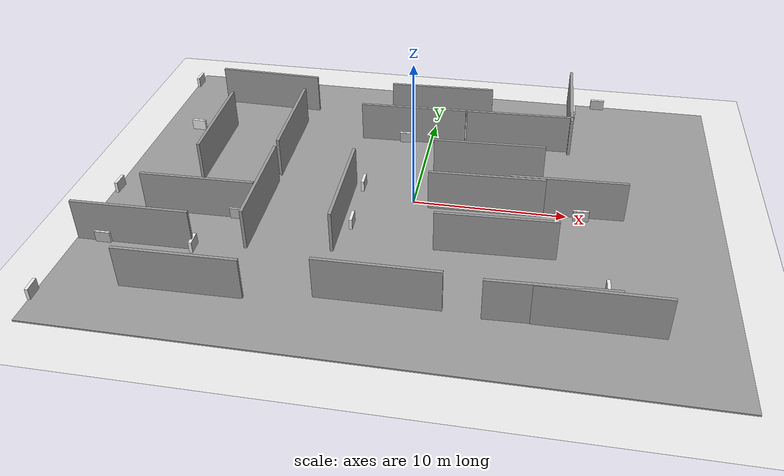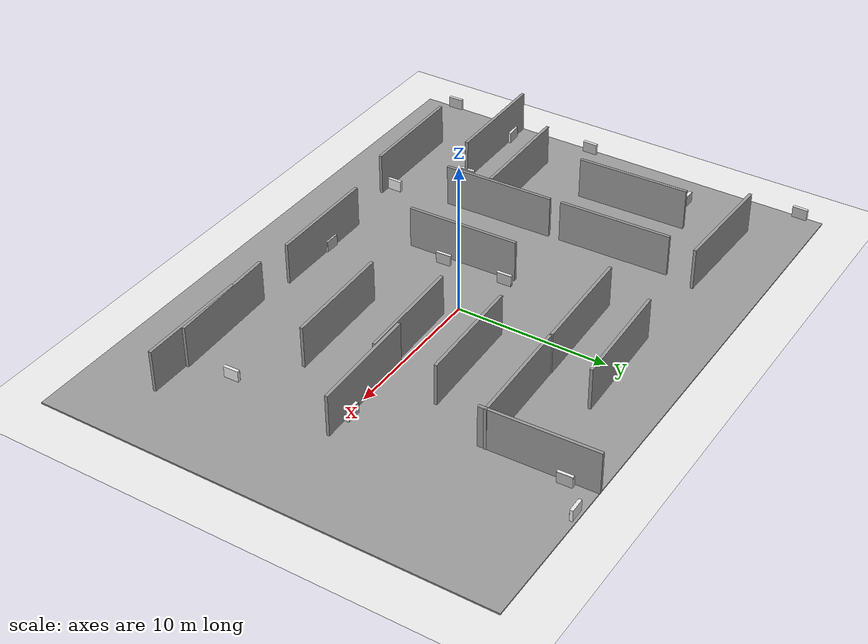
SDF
<sdf version="1.7">
 <world name="default">
  <model name="ground_plane">
   <static>1</static>
   <link name="link">
    <collision name="collision">
     <geometry><plane><normal>0 0 1</normal><size>100 100</size></plane></geometry>
     <surface><friction><ode><mu>100</mu><mu2>50</mu2></ode></friction></surface>
    </collision>
    <visual name="visual">
     <cast_shadows>0</cast_shadows>
     <geometry><plane><normal>0 0 1</normal><size>100 100</size></plane></geometry>
     <material>
      <script><uri>file://media/materials/scripts/gazebo.material</uri><name>Gazebo/White</name></script>
     </material>
    </visual>
   </link>
  </model>
  <model name="floor">
   <pose>-0.081554 -0.068623 0.05 0 -0 0</pose>
   <static>1</static>
   <link name="link">
    <inertial>
     <mass>1</mass>
     <inertia>
      <ixx>0.166667</ixx>
      <ixy>0</ixy>
      <ixz>0</ixz>
      <iyy>0.166667</iyy>
      <iyz>0</iyz>
      <izz>0.166667</izz>
     </inertia>
    </inertial>
    <collision name="collision"><geometry><box><size>40 30 0.1</size></box></geometry></collision>
    <visual name="visual">
     <geometry><box><size>40 30 0.1</size></box></geometry>
     <material>
      <script><name>Gazebo/Grey</name><uri>file://media/materials/scripts/gazebo.material</uri></script>
     </material>
    </visual>
   </link>
  </model>
  <model name="grey_wall">
   <static>1</static>
   <link name="link">
    <pose>0 0 1.4 0 -0 0.1</pose>
    <collision name="collision"><geometry><box><size>7.5 0.2 2.8</size></box></geometry></collision>
    <visual name="visual">
     <cast_shadows>0</cast_shadows>
     <geometry><box><size>7.5 0.2 2.8</size></box></geometry>
     <material>
      <script>
       <uri>model://grey_wall/materials/scripts</uri>
       <uri>model://grey_wall/materials/textures</uri>
       <name>vrc/grey_wall</name>
      </script>
     </material>
    </visual>
   </link>
   <pose>12.0141 -10.3857 0.1 0 0 -0.092931</pose>
  </model>
  <model name="grey_wall_clone">
   <static>1</static>
   <link name="link">
    <pose>0 0 1.4 0 -0 0.1</pose>
    <collision name="collision"><geometry><box><size>7.5 0.2 2.8</size></box></geometry></collision>
    <visual name="visual">
     <cast_shadows>0</cast_shadows>
     <geometry><box><size>7.5 0.2 2.8</size></box></geometry>
     <material>
      <script>
       <uri>model://grey_wall/materials/scripts</uri>
       <uri>model://grey_wall/materials/textures</uri>
       <name>vrc/grey_wall</name>
      </script>
     </material>
    </visual>
   </link>
   <pose>-13.3371 -3.69551 0.1 0 0 -0.080153</pose>
  </model>
  <model name="grey_wall_clone_clone">
   <static>1</static>
   <link name="link">
    <pose>0 0 1.4 0 -0 0.1</pose>
    <collision name="collision"><geometry><box><size>7.5 0.2 2.8</size></box></geometry></collision>
    <visual name="visual">
     <cast_shadows>0</cast_shadows>
     <geometry><box><size>7.5 0.2 2.8</size></box></geometry>
     <material>
      <script>
       <uri>model://grey_wall/materials/scripts</uri>
       <uri>model://grey_wall/materials/textures</uri>
       <name>vrc/grey_wall</name>
      </script>
     </material>
    </visual>
   </link>
   <pose>-14.7906 3.85135 0.1 0 0 -1.64658</pose>
  </model>
  <model name="grey_wall_clone_clone_clone">
   <static>1</static>
   <link name="link">
    <pose>0 0 1.4 0 -0 0.1</pose>
    <collision name="collision"><geometry><box><size>7.5 0.2 2.8</size></box></geometry></collision>
    <visual name="visual">
     <cast_shadows>0</cast_shadows>
     <geometry><box><size>7.5 0.2 2.8</size></box></geometry>
     <material>
      <script>
       <uri>model://grey_wall/materials/scripts</uri>
       <uri>model://grey_wall/materials/textures</uri>
       <name>vrc/grey_wall</name>
      </script>
     </material>
    </visual>
   </link>
   <pose>-9.68074 5.24499 0.1 0 0 -1.64658</pose>
  </model>
  <model name="grey_wall_clone_clone_clone_0">
   <static>1</static>
   <link name="link">
    <pose>0 0 1.4 0 -0 0.1</pose>
    <collision name="collision"><geometry><box><size>7.5 0.2 2.8</size></box></geometry></collision>
    <visual name="visual">
     <cast_shadows>0</cast_shadows>
     <geometry><box><size>7.5 0.2 2.8</size></box></geometry>
     <material>
      <script>
       <uri>model://grey_wall/materials/scripts</uri>
       <uri>model://grey_wall/materials/textures</uri>
       <name>vrc/grey_wall</name>
      </script>
     </material>
    </visual>
   </link>
   <pose>-4.16896 -2.3534 0.1 0 0 -1.64658</pose>
  </model>
  <model name="grey_wall_clone_clone_clone_1">
   <static>1</static>
   <link name="link">
    <pose>0 0 1.4 0 -0 0.1</pose>
    <collision name="collision"><geometry><box><size>7.5 0.2 2.8</size></box></geometry></collision>
    <visual name="visual">
     <cast_shadows>0</cast_shadows>
     <geometry><box><size>7.5 0.2 2.8</size></box></geometry>
     <material>
      <script>
       <uri>model://grey_wall/materials/scripts</uri>
       <uri>model://grey_wall/materials/textures</uri>
       <name>vrc/grey_wall</name>
      </script>
     </material>
    </visual>
   </link>
   <pose>-9.46126 -2.97794 0.1 0 0 -1.64658</pose>
  </model>
  <model name="grey_wall_clone_0">
   <static>1</static>
   <link name="link">
    <pose>0 0 1.4 0 -0 0.1</pose>
    <collision name="collision"><geometry><box><size>7.5 0.2 2.8</size></box></geometry></collision>
    <visual name="visual">
     <cast_shadows>0</cast_shadows>
     <geometry><box><size>7.5 0.2 2.8</size></box></geometry>
     <material>
      <script>
       <uri>model://grey_wall/materials/scripts</uri>
       <uri>model://grey_wall/materials/textures</uri>
       <name>vrc/grey_wall</name>
      </script>
     </material>
    </visual>
   </link>
   <pose>-0.392258 -10.242 0.1 0 0 -0.089</pose>
  </model>
  <model name="grey_wall_clone_1">
   <static>1</static>
   <link name="link">
    <pose>0 0 1.4 0 -0 0.1</pose>
    <collision name="collision"><geometry><box><size>7.5 0.2 2.8</size></box></geometry></collision>
    <visual name="visual">
     <cast_shadows>0</cast_shadows>
     <geometry><box><size>7.5 0.2 2.8</size></box></geometry>
     <material>
      <script>
       <uri>model://grey_wall/materials/scripts</uri>
       <uri>model://grey_wall/materials/textures</uri>
       <name>vrc/grey_wall</name>
      </script>
     </material>
    </visual>
   </link>
   <pose>9.31794 -10.3288 0.1 0 0 -0.062574</pose>
  </model>
  <model name="grey_wall_clone_2">
   <static>1</static>
   <link name="link">
    <pose>0 0 1.4 0 -0 0.1</pose>
    <collision name="collision"><geometry><box><size>7.5 0.2 2.8</size></box></geometry></collision>
    <visual name="visual">
     <cast_shadows>0</cast_shadows>
     <geometry><box><size>7.5 0.2 2.8</size></box></geometry>
     <material>
      <script>
       <uri>model://grey_wall/materials/scripts</uri>
       <uri>model://grey_wall/materials/textures</uri>
       <name>vrc/grey_wall</name>
      </script>
     </material>
    </visual>
   </link>
   <pose>6.31492 7.83301 0.1 0 0 -0.062574</pose>
  </model>
  <model name="grey_wall_clone_3">
   <static>1</static>
   <link name="link">
    <pose>0 0 1.4 0 -0 0.1</pose>
    <collision name="collision"><geometry><box><size>7.5 0.2 2.8</size></box></geometry></collision>
    <visual name="visual">
     <cast_shadows>0</cast_shadows>
     <geometry><box><size>7.5 0.2 2.8</size></box></geometry>
     <material>
      <script>
       <uri>model://grey_wall/materials/scripts</uri>
       <uri>model://grey_wall/materials/textures</uri>
       <name>vrc/grey_wall</name>
      </script>
     </material>
    </visual>
   </link>
   <pose>4.56276 3.55513 0.1 0 0 -0.062574</pose>
  </model>
  <model name="grey_wall_clone_clone_clone_0_clone_clone">
   <static>1</static>
   <link name="link">
    <pose>0 0 1.4 0 -0 0.1</pose>
    <collision name="collision"><geometry><box><size>7.5 0.2 2.8</size></box></geometry></collision>
    <visual name="visual">
     <cast_shadows>0</cast_shadows>
     <geometry><box><size>7.5 0.2 2.8</size></box></geometry>
     <material>
      <script>
       <uri>model://grey_wall/materials/scripts</uri>
       <uri>model://grey_wall/materials/textures</uri>
       <name>vrc/grey_wall</name>
      </script>
     </material>
    </visual>
   </link>
   <pose>9.85606 11.2329 0.1 0 0 -1.64658</pose>
  </model>
  <model name="grey_wall_clone_2_clone">
   <static>1</static>
   <link name="link">
    <pose>0 0 1.4 0 -0 0.1</pose>
    <collision name="collision"><geometry><box><size>7.5 0.2 2.8</size></box></geometry></collision>
    <visual name="visual">
     <cast_shadows>0</cast_shadows>
     <geometry><box><size>7.5 0.2 2.8</size></box></geometry>
     <material>
      <script>
       <uri>model://grey_wall/materials/scripts</uri>
       <uri>model://grey_wall/materials/textures</uri>
       <name>vrc/grey_wall</name>
      </script>
     </material>
    </visual>
   </link>
   <pose>0.32639 11.0034 0.1 0 0 -0.062574</pose>
  </model>
  <model name="grey_wall_clone_3_clone">
   <static>1</static>
   <link name="link">
    <pose>0 0 1.4 0 -0 0.1</pose>
    <collision name="collision"><geometry><box><size>7.5 0.2 2.8</size></box></geometry></collision>
    <visual name="visual">
     <cast_shadows>0</cast_shadows>
     <geometry><box><size>7.5 0.2 2.8</size></box></geometry>
     <material>
      <script>
       <uri>model://grey_wall/materials/scripts</uri>
       <uri>model://grey_wall/materials/textures</uri>
       <name>vrc/grey_wall</name>
      </script>
     </material>
    </visual>
   </link>
   <pose>5.77376 -4.6852 0.1 0 0 -0.062574</pose>
  </model>
  <model name="left_dir_sign_clone_clone">
   <static>1</static>
   <pose>10.1673 13.0421 0.45 0 0 -3.11001</pose>
   <link name="link">
    <inertial>
     <mass>1</mass>
     <inertia>
      <ixx>0.166667</ixx>
      <ixy>0</ixy>
      <ixz>0</ixz>
      <iyy>0.166667</iyy>
      <iyz>0</iyz>
      <izz>0.166667</izz>
     </inertia>
    </inertial>
    <collision name="collision"><geometry><box><size>0.2 1 0.8</size></box></geometry></collision>
    <visual name="visual_body">
     <geometry><box><size>0.2 1 0.8</size></box></geometry>
     <material>
      <script><name>Gazebo/White</name><uri>file://media/materials/scripts/gazebo.material</uri></script>
     </material>
    </visual>
    <visual name="front_face">
     <geometry><box><size>0.01 1 0.8</size></box></geometry>
     <material>
      <script><uri>model://arrow_detection/worlds/map_1_materials</uri><name>right/Diffuse</name></script>
     </material>
     <pose>-0.101 0 0 3.14 -0 0</pose>
    </visual>
   </link>
  </model>
  <model name="left_dir_sign_clone_clone_clone">
   <static>1</static>
   <pose>10.9092 -0.347927 0.45 0 -0 1.6013</pose>
   <link name="link">
    <inertial>
     <mass>1</mass>
     <inertia>
      <ixx>0.166667</ixx>
      <ixy>0</ixy>
      <ixz>0</ixz>
      <iyy>0.166667</iyy>
      <iyz>0</iyz>
      <izz>0.166667</izz>
     </inertia>
    </inertial>
    <collision name="collision"><geometry><box><size>0.2 1 0.8</size></box></geometry></collision>
    <visual name="visual_body">
     <geometry><box><size>0.2 1 0.8</size></box></geometry>
     <material>
      <script><name>Gazebo/White</name><uri>file://media/materials/scripts/gazebo.material</uri></script>
     </material>
    </visual>
    <visual name="front_face">
     <geometry><box><size>0.01 1 0.8</size></box></geometry>
     <material>
      <script><uri>model://arrow_detection/worlds/map_1_materials</uri><name>right/Diffuse</name></script>
     </material>
     <pose>-0.101 0 0 3.14 -0 0</pose>
    </visual>
   </link>
  </model>
  <model name="right_dir_sign">
   <static>1</static>
   <pose>-3.43257 -3.26418 0.45 0 0 -3.10589</pose>
   <link name="link">
    <inertial>
     <mass>1</mass>
     <inertia>
      <ixx>0.166667</ixx>
      <ixy>0</ixy>
      <ixz>0</ixz>
      <iyy>0.166667</iyy>
      <iyz>0</iyz>
      <izz>0.166667</izz>
     </inertia>
    </inertial>
    <collision name="collision"><geometry><box><size>0.2 1 0.8</size></box></geometry></collision>
    <visual name="visual_body">
     <geometry><box><size>0.2 1 0.8</size></box></geometry>
     <material>
      <script><name>Gazebo/White</name><uri>file://media/materials/scripts/gazebo.material</uri></script>
     </material>
    </visual>
    <visual name="front_face">
     <geometry><box><size>0.01 1 0.8</size></box></geometry>
     <material>
      <script><uri>model://arrow_detection/worlds/map_1_materials</uri><name>right/Diffuse</name></script>
     </material>
     <pose>-0.101 0 0 0 -0 0</pose>
    </visual>
   </link>
  </model>
  <model name="grey_wall_clone_3_clone_0">
   <static>1</static>
   <link name="link">
    <pose>0 0 1.4 0 -0 0.1</pose>
    <collision name="collision"><geometry><box><size>7.5 0.2 2.8</size></box></geometry></collision>
    <visual name="visual">
     <cast_shadows>0</cast_shadows>
     <geometry><box><size>7.5 0.2 2.8</size></box></geometry>
     <material>
      <script>
       <uri>model://grey_wall/materials/scripts</uri>
       <uri>model://grey_wall/materials/textures</uri>
       <name>vrc/grey_wall</name>
      </script>
     </material>
    </visual>
   </link>
   <pose>4.77508 -0.390115 0.1 0 0 -0.062574</pose>
  </model>
  <model name="left_dir_sign_clone_clone_clone_clone">
   <static>1</static>
   <pose>-3.59518 1.03523 0.45 0 0 -3.11552</pose>
   <link name="link">
    <inertial>
     <mass>1</mass>
     <inertia>
      <ixx>0.166667</ixx>
      <ixy>0</ixy>
      <ixz>0</ixz>
      <iyy>0.166667</iyy>
      <iyz>0</iyz>
      <izz>0.166667</izz>
     </inertia>
    </inertial>
    <collision name="collision"><geometry><box><size>0.2 1 0.8</size></box></geometry></collision>
    <visual name="visual_body">
     <geometry><box><size>0.2 1 0.8</size></box></geometry>
     <material>
      <script><name>Gazebo/White</name><uri>file://media/materials/scripts/gazebo.material</uri></script>
     </material>
    </visual>
    <visual name="front_face">
     <geometry><box><size>0.01 1 0.8</size></box></geometry>
     <material>
      <script><uri>model://arrow_detection/worlds/map_1_materials</uri><name>right/Diffuse</name></script>
     </material>
     <pose>-0.101 0 0 3.14 -0 0</pose>
    </visual>
   </link>
  </model>
  <model name="left_dir_sign_clone_clone_clone_clone_clone">
   <static>1</static>
   <pose>12.5495 -7.34023 0.45 0 -0 0.025385</pose>
   <link name="link">
    <inertial>
     <mass>1</mass>
     <inertia>
      <ixx>0.166667</ixx>
      <ixy>0</ixy>
      <ixz>0</ixz>
      <iyy>0.166667</iyy>
      <iyz>0</iyz>
      <izz>0.166667</izz>
     </inertia>
    </inertial>
    <collision name="collision"><geometry><box><size>0.2 1 0.8</size></box></geometry></collision>
    <visual name="visual_body">
     <geometry><box><size>0.2 1 0.8</size></box></geometry>
     <material>
      <script><name>Gazebo/White</name><uri>file://media/materials/scripts/gazebo.material</uri></script>
     </material>
    </visual>
    <visual name="front_face">
     <geometry><box><size>0.01 1 0.8</size></box></geometry>
     <material>
      <script><uri>model://arrow_detection/worlds/map_1_materials</uri><name>right/Diffuse</name></script>
     </material>
     <pose>-0.101 0 0 3.14 -0 0</pose>
    </visual>
   </link>
  </model>
  <model name="grey_wall_clone_3_clone_0_clone">
   <static>1</static>
   <link name="link">
    <pose>0 0 1.4 0 -0 0.1</pose>
    <collision name="collision"><geometry><box><size>7.5 0.2 2.8</size></box></geometry></collision>
    <visual name="visual">
     <cast_shadows>0</cast_shadows>
     <geometry><box><size>7.5 0.2 2.8</size></box></geometry>
     <material>
      <script>
       <uri>model://grey_wall/materials/scripts</uri>
       <uri>model://grey_wall/materials/textures</uri>
       <name>vrc/grey_wall</name>
      </script>
     </material>
    </visual>
   </link>
   <pose>9.92499 0.021685 0.1 0 0 -0.062574</pose>
  </model>
  <model name="grey_wall_clone_0_clone">
   <static>1</static>
   <link name="link">
    <pose>0 0 1.4 0 -0 0.1</pose>
    <collision name="collision"><geometry><box><size>7.5 0.2 2.8</size></box></geometry></collision>
    <visual name="visual">
     <cast_shadows>0</cast_shadows>
     <geometry><box><size>7.5 0.2 2.8</size></box></geometry>
     <material>
      <script>
       <uri>model://grey_wall/materials/scripts</uri>
       <uri>model://grey_wall/materials/textures</uri>
       <name>vrc/grey_wall</name>
      </script>
     </material>
    </visual>
   </link>
   <pose>-11.7881 -11.1645 0.1 0 0 -0.083866</pose>
  </model>
  <model name="grey_wall_clone_0_clone_0">
   <static>1</static>
   <link name="link">
    <pose>0 0 1.4 0 -0 0.1</pose>
    <collision name="collision"><geometry><box><size>7.5 0.2 2.8</size></box></geometry></collision>
    <visual name="visual">
     <cast_shadows>0</cast_shadows>
     <geometry><box><size>7.5 0.2 2.8</size></box></geometry>
     <material>
      <script>
       <uri>model://grey_wall/materials/scripts</uri>
       <uri>model://grey_wall/materials/textures</uri>
       <name>vrc/grey_wall</name>
      </script>
     </material>
    </visual>
   </link>
   <pose>-16.2463 -7.33038 0.1 0 0 -0.08449</pose>
  </model>
  <model name="grey_wall_clone_2_clone_clone">
   <static>1</static>
   <link name="link">
    <pose>0 0 1.4 0 -0 0.1</pose>
    <collision name="collision"><geometry><box><size>7.5 0.2 2.8</size></box></geometry></collision>
    <visual name="visual">
     <cast_shadows>0</cast_shadows>
     <geometry><box><size>7.5 0.2 2.8</size></box></geometry>
     <material>
      <script>
       <uri>model://grey_wall/materials/scripts</uri>
       <uri>model://grey_wall/materials/textures</uri>
       <name>vrc/grey_wall</name>
      </script>
     </material>
    </visual>
   </link>
   <pose>-1.29384 7.57148 0.1 0 0 -0.062574</pose>
  </model>
  <model name="grey_wall_clone_clone_clone_2">
   <static>1</static>
   <link name="link">
    <pose>0 0 1.4 0 -0 0.1</pose>
    <collision name="collision"><geometry><box><size>7.5 0.2 2.8</size></box></geometry></collision>
    <visual name="visual">
     <cast_shadows>0</cast_shadows>
     <geometry><box><size>7.5 0.2 2.8</size></box></geometry>
     <material>
      <script>
       <uri>model://grey_wall/materials/scripts</uri>
       <uri>model://grey_wall/materials/textures</uri>
       <name>vrc/grey_wall</name>
      </script>
     </material>
    </visual>
   </link>
   <pose>-13.003 11.0219 0.1 0 -0 3.01212</pose>
  </model>
  <model name="left_dir_sign_clone_clone_clone_clone_0">
   <static>1</static>
   <pose>-19.9392 13.408 0.45 0 -0 3.12008</pose>
   <link name="link">
    <inertial>
     <mass>1</mass>
     <inertia>
      <ixx>0.166667</ixx>
      <ixy>0</ixy>
      <ixz>0</ixz>
      <iyy>0.166667</iyy>
      <iyz>0</iyz>
      <izz>0.166667</izz>
     </inertia>
    </inertial>
    <collision name="collision"><geometry><box><size>0.2 1 0.8</size></box></geometry></collision>
    <visual name="visual_body">
     <geometry><box><size>0.2 1 0.8</size></box></geometry>
     <material>
      <script><name>Gazebo/White</name><uri>file://media/materials/scripts/gazebo.material</uri></script>
     </material>
    </visual>
    <visual name="front_face">
     <geometry><box><size>0.01 1 0.8</size></box></geometry>
     <material>
      <script><uri>model://arrow_detection/worlds/map_1_materials</uri><name>right/Diffuse</name></script>
     </material>
     <pose>-0.101 0 0 3.14 -0 0</pose>
    </visual>
   </link>
  </model>
  <model name="left_dir_sign_clone_clone_clone_clone_0_clone">
   <static>1</static>
   <pose>-17.4125 6.57296 0.45 0 0 -1.59641</pose>
   <link name="link">
    <inertial>
     <mass>1</mass>
     <inertia>
      <ixx>0.166667</ixx>
      <ixy>0</ixy>
      <ixz>0</ixz>
      <iyy>0.166667</iyy>
      <iyz>0</iyz>
      <izz>0.166667</izz>
     </inertia>
    </inertial>
    <collision name="collision"><geometry><box><size>0.2 1 0.8</size></box></geometry></collision>
    <visual name="visual_body">
     <geometry><box><size>0.2 1 0.8</size></box></geometry>
     <material>
      <script><name>Gazebo/White</name><uri>file://media/materials/scripts/gazebo.material</uri></script>
     </material>
    </visual>
    <visual name="front_face">
     <geometry><box><size>0.01 1 0.8</size></box></geometry>
     <material>
      <script><uri>model://arrow_detection/worlds/map_1_materials</uri><name>right/Diffuse</name></script>
     </material>
     <pose>-0.101 0 0 3.14 -0 0</pose>
    </visual>
   </link>
  </model>
  <model name="left_dir_sign_clone_clone_clone_clone_0_clone_0">
   <static>1</static>
   <pose>-19.7974 -1.88884 0.45 0 -0 3.11244</pose>
   <link name="link">
    <inertial>
     <mass>1</mass>
     <inertia>
      <ixx>0.166667</ixx>
      <ixy>0</ixy>
      <ixz>0</ixz>
      <iyy>0.166667</iyy>
      <iyz>0</iyz>
      <izz>0.166667</izz>
     </inertia>
    </inertial>
    <collision name="collision"><geometry><box><size>0.2 1 0.8</size></box></geometry></collision>
    <visual name="visual_body">
     <geometry><box><size>0.2 1 0.8</size></box></geometry>
     <material>
      <script><name>Gazebo/White</name><uri>file://media/materials/scripts/gazebo.material</uri></script>
     </material>
    </visual>
    <visual name="front_face">
     <geometry><box><size>0.01 1 0.8</size></box></geometry>
     <material>
      <script><uri>model://arrow_detection/worlds/map_1_materials</uri><name>right/Diffuse</name></script>
     </material>
     <pose>-0.101 0 0 3.14 -0 0</pose>
    </visual>
   </link>
  </model>
  <model name="left_dir_sign_clone_clone_clone_clone_0_clone_clone">
   <static>1</static>
   <pose>-18.4317 -7.23422 0.45 0 0 -1.51629</pose>
   <link name="link">
    <inertial>
     <mass>1</mass>
     <inertia>
      <ixx>0.166667</ixx>
      <ixy>0</ixy>
      <ixz>0</ixz>
      <iyy>0.166667</iyy>
      <iyz>0</iyz>
      <izz>0.166667</izz>
     </inertia>
    </inertial>
    <collision name="collision"><geometry><box><size>0.2 1 0.8</size></box></geometry></collision>
    <visual name="visual_body">
     <geometry><box><size>0.2 1 0.8</size></box></geometry>
     <material>
      <script><name>Gazebo/White</name><uri>file://media/materials/scripts/gazebo.material</uri></script>
     </material>
    </visual>
    <visual name="front_face">
     <geometry><box><size>0.01 1 0.8</size></box></geometry>
     <material>
      <script><uri>model://arrow_detection/worlds/map_1_materials</uri><name>right/Diffuse</name></script>
     </material>
     <pose>-0.101 0 0 3.14 -0 0</pose>
    </visual>
   </link>
  </model>
  <model name="right_dir_sign_clone">
   <static>1</static>
   <pose>11.6583 0.390068 0.45 0 0 -1.53391</pose>
   <link name="link">
    <inertial>
     <mass>1</mass>
     <inertia>
      <ixx>0.166667</ixx>
      <ixy>0</ixy>
      <ixz>0</ixz>
      <iyy>0.166667</iyy>
      <iyz>0</iyz>
      <izz>0.166667</izz>
     </inertia>
    </inertial>
    <collision name="collision"><geometry><box><size>0.2 1 0.8</size></box></geometry></collision>
    <visual name="visual_body">
     <geometry><box><size>0.2 1 0.8</size></box></geometry>
     <material>
      <script><name>Gazebo/White</name><uri>file://media/materials/scripts/gazebo.material</uri></script>
     </material>
    </visual>
    <visual name="front_face">
     <geometry><box><size>0.01 1 0.8</size></box></geometry>
     <material>
      <script><uri>model://arrow_detection/worlds/map_1_materials</uri><name>right/Diffuse</name></script>
     </material>
     <pose>-0.101 0 0 0 -0 0</pose>
    </visual>
   </link>
  </model>
  <model name="right_dir_sign_clone_0">
   <static>1</static>
   <pose>-1.7459 7.3703 0.45 0 -0 1.62342</pose>
   <link name="link">
    <inertial>
     <mass>1</mass>
     <inertia>
      <ixx>0.166667</ixx>
      <ixy>0</ixy>
      <ixz>0</ixz>
      <iyy>0.166667</iyy>
      <iyz>0</iyz>
      <izz>0.166667</izz>
     </inertia>
    </inertial>
    <collision name="collision"><geometry><box><size>0.2 1 0.8</size></box></geometry></collision>
    <visual name="visual_body">
     <geometry><box><size>0.2 1 0.8</size></box></geometry>
     <material>
      <script><name>Gazebo/White</name><uri>file://media/materials/scripts/gazebo.material</uri></script>
     </material>
    </visual>
    <visual name="front_face">
     <geometry><box><size>0.01 1 0.8</size></box></geometry>
     <material>
      <script><uri>model://arrow_detection/worlds/map_1_materials</uri><name>right/Diffuse</name></script>
     </material>
     <pose>-0.101 0 0 0 -0 0</pose>
    </visual>
   </link>
  </model>
  <model name="right_dir_sign_clone_1">
   <static>1</static>
   <pose>11.9605 14.6593 0.45 0 -0 1.59263</pose>
   <link name="link">
    <inertial>
     <mass>1</mass>
     <inertia>
      <ixx>0.166667</ixx>
      <ixy>0</ixy>
      <ixz>0</ixz>
      <iyy>0.166667</iyy>
      <iyz>0</iyz>
      <izz>0.166667</izz>
     </inertia>
    </inertial>
    <collision name="collision"><geometry><box><size>0.2 1 0.8</size></box></geometry></collision>
    <visual name="visual_body">
     <geometry><box><size>0.2 1 0.8</size></box></geometry>
     <material>
      <script><name>Gazebo/White</name><uri>file://media/materials/scripts/gazebo.material</uri></script>
     </material>
    </visual>
    <visual name="front_face">
     <geometry><box><size>0.01 1 0.8</size></box></geometry>
     <material>
      <script><uri>model://arrow_detection/worlds/map_1_materials</uri><name>right/Diffuse</name></script>
     </material>
     <pose>-0.101 0 0 0 -0 0</pose>
    </visual>
   </link>
  </model>
  <model name="right_dir_sign_clone_2">
   <static>1</static>
   <pose>-1.06597 -10.1597 0.45 0 0 -1.57597</pose>
   <link name="link">
    <inertial>
     <mass>1</mass>
     <inertia>
      <ixx>0.166667</ixx>
      <ixy>0</ixy>
      <ixz>0</ixz>
      <iyy>0.166667</iyy>
      <iyz>0</iyz>
      <izz>0.166667</izz>
     </inertia>
    </inertial>
    <collision name="collision"><geometry><box><size>0.2 1 0.8</size></box></geometry></collision>
    <visual name="visual_body">
     <geometry><box><size>0.2 1 0.8</size></box></geometry>
     <material>
      <script><name>Gazebo/White</name><uri>file://media/materials/scripts/gazebo.material</uri></script>
     </material>
    </visual>
    <visual name="front_face">
     <geometry><box><size>0.01 1 0.8</size></box></geometry>
     <material>
      <script><uri>model://arrow_detection/worlds/map_1_materials</uri><name>right/Diffuse</name></script>
     </material>
     <pose>-0.101 0 0 0 -0 0</pose>
    </visual>
   </link>
  </model>
  <model name="right_dir_sign_clone_3">
   <static>1</static>
   <pose>-12.5206 -7.21469 0.45 0 0 -3.10589</pose>
   <link name="link">
    <inertial>
     <mass>1</mass>
     <inertia>
      <ixx>0.166667</ixx>
      <ixy>0</ixy>
      <ixz>0</ixz>
      <iyy>0.166667</iyy>
      <iyz>0</iyz>
      <izz>0.166667</izz>
     </inertia>
    </inertial>
    <collision name="collision"><geometry><box><size>0.2 1 0.8</size></box></geometry></collision>
    <visual name="visual_body">
     <geometry><box><size>0.2 1 0.8</size></box></geometry>
     <material>
      <script><name>Gazebo/White</name><uri>file://media/materials/scripts/gazebo.material</uri></script>
     </material>
    </visual>
    <visual name="front_face">
     <geometry><box><size>0.01 1 0.8</size></box></geometry>
     <material>
      <script><uri>model://arrow_detection/worlds/map_1_materials</uri><name>right/Diffuse</name></script>
     </material>
     <pose>-0.101 0 0 0 -0 0</pose>
    </visual>
   </link>
  </model>
  <model name="left_dir_sign_clone_clone_clone_clone_0_clone_0_clone">
   <static>1</static>
   <pose>-10.8369 -3.75846 0.45 0 -0 1.59108</pose>
   <link name="link">
    <inertial>
     <mass>1</mass>
     <inertia>
      <ixx>0.166667</ixx>
      <ixy>0</ixy>
      <ixz>0</ixz>
      <iyy>0.166667</iyy>
      <iyz>0</iyz>
      <izz>0.166667</izz>
     </inertia>
    </inertial>
    <collision name="collision"><geometry><box><size>0.2 1 0.8</size></box></geometry></collision>
    <visual name="visual_body">
     <geometry><box><size>0.2 1 0.8</size></box></geometry>
     <material>
      <script><name>Gazebo/White</name><uri>file://media/materials/scripts/gazebo.material</uri></script>
     </material>
    </visual>
    <visual name="front_face">
     <geometry><box><size>0.01 1 0.8</size></box></geometry>
     <material>
      <script><uri>model://arrow_detection/worlds/map_1_materials</uri><name>right/Diffuse</name></script>
     </material>
     <pose>-0.101 0 0 3.14 -0 0</pose>
    </visual>
   </link>
  </model>
  <model name="right_dir_sign_clone_3_clone">
   <static>1</static>
   <pose>-20.0491 -12.8384 0.45 0 0 -3.10589</pose>
   <link name="link">
    <inertial>
     <mass>1</mass>
     <inertia>
      <ixx>0.166667</ixx>
      <ixy>0</ixy>
      <ixz>0</ixz>
      <iyy>0.166667</iyy>
      <iyz>0</iyz>
      <izz>0.166667</izz>
     </inertia>
    </inertial>
    <collision name="collision"><geometry><box><size>0.2 1 0.8</size></box></geometry></collision>
    <visual name="visual_body">
     <geometry><box><size>0.2 1 0.8</size></box></geometry>
     <material>
      <script><name>Gazebo/White</name><uri>file://media/materials/scripts/gazebo.material</uri></script>
     </material>
    </visual>
    <visual name="front_face">
     <geometry><box><size>0.01 1 0.8</size></box></geometry>
     <material>
      <script><uri>model://arrow_detection/worlds/map_1_materials</uri><name>right/Diffuse</name></script>
     </material>
     <pose>-0.101 0 0 0 -0 0</pose>
    </visual>
   </link>
  </model>
  <model name="right_dir_sign_clone_3_clone_0">
   <static>1</static>
   <pose>-18.2681 -7.50315 0.45 0 -0 1.57124</pose>
   <link name="link">
    <inertial>
     <mass>1</mass>
     <inertia>
      <ixx>0.166667</ixx>
      <ixy>0</ixy>
      <ixz>0</ixz>
      <iyy>0.166667</iyy>
      <iyz>0</iyz>
      <izz>0.166667</izz>
     </inertia>
    </inertial>
    <collision name="collision"><geometry><box><size>0.2 1 0.8</size></box></geometry></collision>
    <visual name="visual_body">
     <geometry><box><size>0.2 1 0.8</size></box></geometry>
     <material>
      <script><name>Gazebo/White</name><uri>file://media/materials/scripts/gazebo.material</uri></script>
     </material>
    </visual>
    <visual name="front_face">
     <geometry><box><size>0.01 1 0.8</size></box></geometry>
     <material>
      <script><uri>model://arrow_detection/worlds/map_1_materials</uri><name>right/Diffuse</name></script>
     </material>
     <pose>-0.101 0 0 0 -0 0</pose>
    </visual>
   </link>
  </model>
  <model name="left_dir_sign_clone_clone_clone_clone_0_clone_0_clone_clone">
   <static>1</static>
   <pose>-8.85277 -10.5656 0.45 0 0 -0.006968</pose>
   <link name="link">
    <inertial>
     <mass>1</mass>
     <inertia>
      <ixx>0.166667</ixx>
      <ixy>0</ixy>
      <ixz>0</ixz>
      <iyy>0.166667</iyy>
      <iyz>0</iyz>
      <izz>0.166667</izz>
     </inertia>
    </inertial>
    <collision name="collision"><geometry><box><size>0.2 1 0.8</size></box></geometry></collision>
    <visual name="visual_body">
     <geometry><box><size>0.2 1 0.8</size></box></geometry>
     <material>
      <script><name>Gazebo/White</name><uri>file://media/materials/scripts/gazebo.material</uri></script>
     </material>
    </visual>
    <visual name="front_face">
     <geometry><box><size>0.01 1 0.8</size></box></geometry>
     <material>
      <script><uri>model://arrow_detection/worlds/map_1_materials</uri><name>right/Diffuse</name></script>
     </material>
     <pose>-0.101 0 0 3.14 -0 0</pose>
    </visual>
   </link>
  </model>
 </world>
</sdf>
